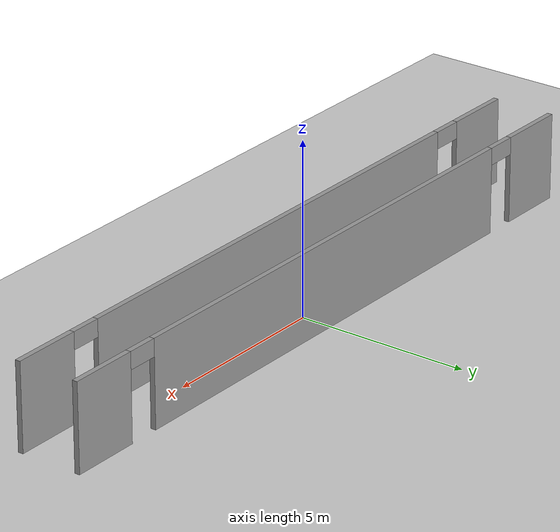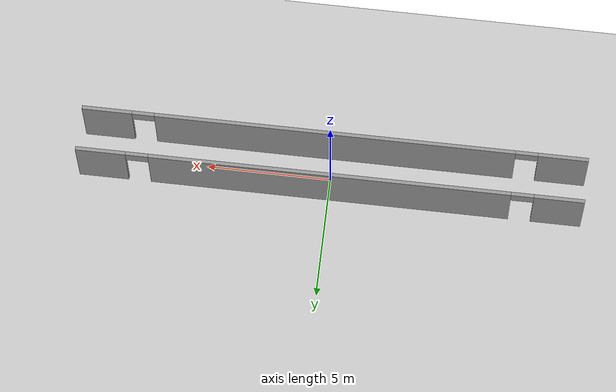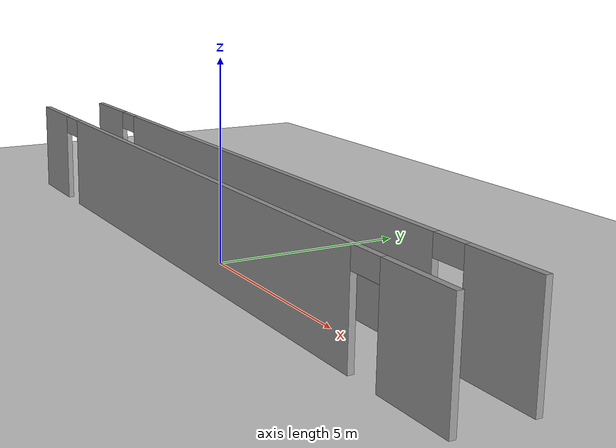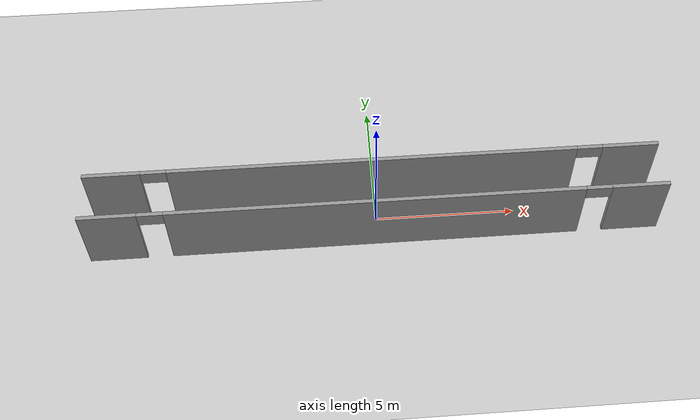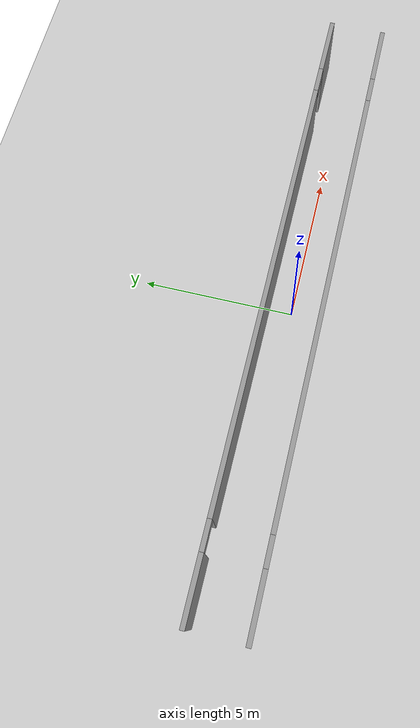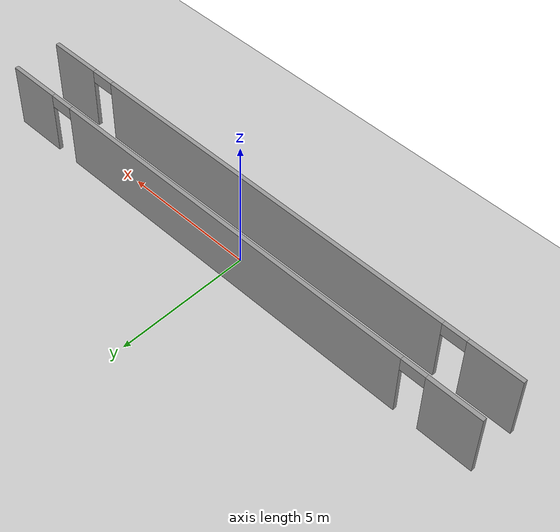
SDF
<sdf version="1.6">
 <world name="default">
  <light name="sun" type="directional">
   <pose>0 0 10 0 -0 0</pose>
   <diffuse>0.8 0.8 0.8 1</diffuse>
   <specular>0.2 0.2 0.2 1</specular>
   <attenuation>
    <range>1000</range>
    <constant>0.9</constant>
    <linear>0.01</linear>
    <quadratic>0.001</quadratic>
   </attenuation>
   <direction>-0.5 0.1 -0.9</direction>
  </light>
  <model name="ground_plane">
   <static>1</static>
   <link name="link">
    <collision name="collision">
     <geometry><plane><normal>0 0 1</normal><size>100 100</size></plane></geometry>
     <surface>
      <contact><collide_bitmask>65535</collide_bitmask></contact>
      <friction><ode><mu>100</mu><mu2>50</mu2></ode></friction>
     </surface>
    </collision>
    <visual name="visual">
     <cast_shadows>0</cast_shadows>
     <geometry><plane><normal>0 0 1</normal><size>100 100</size></plane></geometry>
     <material>
      <script><uri>file://media/materials/scripts/gazebo.material</uri><name>Gazebo/Grey</name></script>
     </material>
    </visual>
   </link>
  </model>
  <gravity>0 0 -9.8</gravity>
  <magnetic_field>6e-06 2.3e-05 -4.2e-05</magnetic_field>
  <atmosphere type="adiabatic"/>
  <physics name="default_physics" default="0" type="ode">
   <max_step_size>0.001</max_step_size>
   <real_time_factor>1</real_time_factor>
   <real_time_update_rate>1000</real_time_update_rate>
  </physics>
  <scene><ambient>0.4 0.4 0.4 1</ambient><background>0.7 0.7 0.7 1</background><shadows>1</shadows></scene>
  <spherical_coordinates>
   <surface_model>EARTH_WGS84</surface_model>
   <latitude_deg>0</latitude_deg>
   <longitude_deg>0</longitude_deg>
   <elevation>0</elevation>
   <heading_deg>0</heading_deg>
  </spherical_coordinates>
  <model name="kordrzwi">
   <pose>-0.042305 -0.071886 0 0 -0 0</pose>
   <link name="Wall_19">
    <pose>-0.004789 -0.891325 0 0 -0 3.14159</pose>
    <visual name="Wall_19_Visual_0">
     <pose>-9.12001 0 1.25 0 -0 0</pose>
     <geometry><box><size>2.00998 0.15 2.5</size></box></geometry>
     <material>
      <script><uri>file://media/materials/scripts/gazebo.material</uri><name>Gazebo/Grey</name></script>
      <ambient>1 1 1 1</ambient>
     </material>
     <meta><layer>0</layer></meta>
    </visual>
    <collision name="Wall_19_Collision_0">
     <geometry><box><size>2.00998 0.15 2.5</size></box></geometry>
     <pose>-9.12001 0 1.25 0 -0 0</pose>
    </collision>
    <visual name="Wall_19_Visual_1">
     <pose>0.004373 0 1.25 0 -0 0</pose>
     <geometry><box><size>14.4388 0.15 2.5</size></box></geometry>
     <material>
      <script><uri>file://media/materials/scripts/gazebo.material</uri><name>Gazebo/Grey</name></script>
      <ambient>1 1 1 1</ambient>
     </material>
     <meta><layer>0</layer></meta>
    </visual>
    <collision name="Wall_19_Collision_1">
     <geometry><box><size>14.4388 0.15 2.5</size></box></geometry>
     <pose>0.004373 0 1.25 0 -0 0</pose>
    </collision>
    <visual name="Wall_19_Visual_2">
     <pose>9.12438 0 1.25 0 -0 0</pose>
     <geometry><box><size>2.00123 0.15 2.5</size></box></geometry>
     <material>
      <script><uri>file://media/materials/scripts/gazebo.material</uri><name>Gazebo/Grey</name></script>
      <ambient>1 1 1 1</ambient>
     </material>
     <meta><layer>0</layer></meta>
    </visual>
    <collision name="Wall_19_Collision_2">
     <geometry><box><size>2.00123 0.15 2.5</size></box></geometry>
     <pose>9.12438 0 1.25 0 -0 0</pose>
    </collision>
    <visual name="Wall_19_Visual_3">
     <pose>-7.66502 0 2.25 0 -0 0</pose>
     <geometry><box><size>0.9 0.15 0.5</size></box></geometry>
     <material>
      <script><uri>file://media/materials/scripts/gazebo.material</uri><name>Gazebo/Grey</name></script>
      <ambient>1 1 1 1</ambient>
     </material>
     <meta><layer>0</layer></meta>
    </visual>
    <collision name="Wall_19_Collision_3">
     <geometry><box><size>0.9 0.15 0.5</size></box></geometry>
     <pose>-7.66502 0 2.25 0 -0 0</pose>
    </collision>
    <visual name="Wall_19_Visual_4">
     <pose>7.67377 0 2.25 0 -0 0</pose>
     <geometry><box><size>0.9 0.15 0.5</size></box></geometry>
     <material>
      <script><uri>file://media/materials/scripts/gazebo.material</uri><name>Gazebo/Grey</name></script>
      <ambient>1 1 1 1</ambient>
     </material>
     <meta><layer>0</layer></meta>
    </visual>
    <collision name="Wall_19_Collision_4">
     <geometry><box><size>0.9 0.15 0.5</size></box></geometry>
     <pose>7.67377 0 2.25 0 -0 0</pose>
    </collision>
   </link>
   <link name="Wall_25">
    <pose>0.004789 0.891325 0 0 -0 3.14159</pose>
    <visual name="Wall_25_Visual_0">
     <pose>-9.12397 0 1.25 0 -0 0</pose>
     <geometry><box><size>2.00207 0.15 2.5</size></box></geometry>
     <material>
      <script><uri>file://media/materials/scripts/gazebo.material</uri><name>Gazebo/Grey</name></script>
      <ambient>1 1 1 1</ambient>
     </material>
     <meta><layer>0</layer></meta>
    </visual>
    <collision name="Wall_25_Collision_0">
     <geometry><box><size>2.00207 0.15 2.5</size></box></geometry>
     <pose>-9.12397 0 1.25 0 -0 0</pose>
    </collision>
    <visual name="Wall_25_Visual_1">
     <pose>-0.003539 0 1.25 0 -0 0</pose>
     <geometry><box><size>14.4388 0.15 2.5</size></box></geometry>
     <material>
      <script><uri>file://media/materials/scripts/gazebo.material</uri><name>Gazebo/Grey</name></script>
      <ambient>1 1 1 1</ambient>
     </material>
     <meta><layer>0</layer></meta>
    </visual>
    <collision name="Wall_25_Collision_1">
     <geometry><box><size>14.4388 0.15 2.5</size></box></geometry>
     <pose>-0.003539 0 1.25 0 -0 0</pose>
    </collision>
    <visual name="Wall_25_Visual_2">
     <pose>9.12043 0 1.25 0 -0 0</pose>
     <geometry><box><size>2.00915 0.15 2.5</size></box></geometry>
     <material>
      <script><uri>file://media/materials/scripts/gazebo.material</uri><name>Gazebo/Grey</name></script>
      <ambient>1 1 1 1</ambient>
     </material>
     <meta><layer>0</layer></meta>
    </visual>
    <collision name="Wall_25_Collision_2">
     <geometry><box><size>2.00915 0.15 2.5</size></box></geometry>
     <pose>9.12043 0 1.25 0 -0 0</pose>
    </collision>
    <visual name="Wall_25_Visual_3">
     <pose>-7.67293 0 2.25 0 -0 0</pose>
     <geometry><box><size>0.9 0.15 0.5</size></box></geometry>
     <material>
      <script><uri>file://media/materials/scripts/gazebo.material</uri><name>Gazebo/Grey</name></script>
      <ambient>1 1 1 1</ambient>
     </material>
     <meta><layer>0</layer></meta>
    </visual>
    <collision name="Wall_25_Collision_3">
     <geometry><box><size>0.9 0.15 0.5</size></box></geometry>
     <pose>-7.67293 0 2.25 0 -0 0</pose>
    </collision>
    <visual name="Wall_25_Visual_4">
     <pose>7.66585 0 2.25 0 -0 0</pose>
     <geometry><box><size>0.9 0.15 0.5</size></box></geometry>
     <material>
      <script><uri>file://media/materials/scripts/gazebo.material</uri><name>Gazebo/Grey</name></script>
      <ambient>1 1 1 1</ambient>
     </material>
     <meta><layer>0</layer></meta>
    </visual>
    <collision name="Wall_25_Collision_4">
     <geometry><box><size>0.9 0.15 0.5</size></box></geometry>
     <pose>7.66585 0 2.25 0 -0 0</pose>
    </collision>
   </link>
   <static>1</static>
  </model>
 </world>
</sdf>
